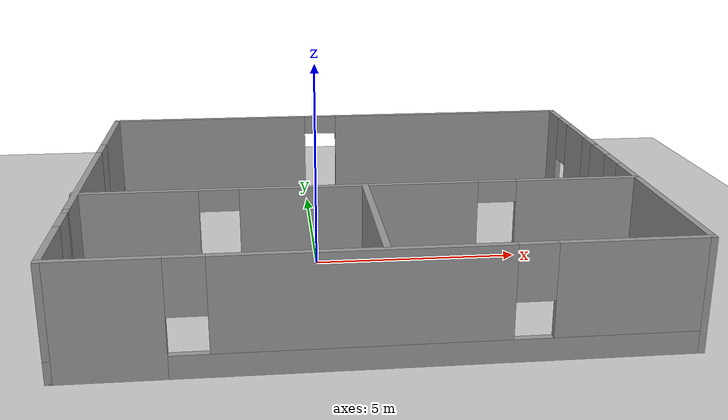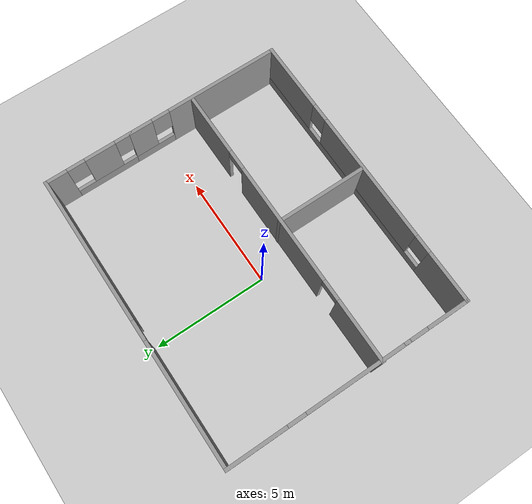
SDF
<sdf version="1.7">
 <world name="default">
  <light name="sun" type="directional">
   <pose>0 0 10 0 -0 0</pose>
   <diffuse>0.8 0.8 0.8 1</diffuse>
   <specular>0.2 0.2 0.2 1</specular>
   <attenuation>
    <range>1000</range>
    <constant>0.9</constant>
    <linear>0.01</linear>
    <quadratic>0.001</quadratic>
   </attenuation>
   <direction>-0.5 0.1 -0.9</direction>
   <spot><inner_angle>0</inner_angle><outer_angle>0</outer_angle><falloff>0</falloff></spot>
  </light>
  <model name="ground_plane">
   <static>1</static>
   <link name="link">
    <collision name="collision">
     <geometry><plane><normal>0 0 1</normal><size>100 100</size></plane></geometry>
     <surface><friction><ode><mu>100</mu><mu2>50</mu2></ode></friction></surface>
    </collision>
    <visual name="visual">
     <cast_shadows>0</cast_shadows>
     <geometry><plane><normal>0 0 1</normal><size>100 100</size></plane></geometry>
     <material>
      <script><uri>file://media/materials/scripts/gazebo.material</uri><name>Gazebo/Grey</name></script>
     </material>
    </visual>
   </link>
  </model>
  <gravity>0 0 -9.8</gravity>
  <magnetic_field>6e-06 2.3e-05 -4.2e-05</magnetic_field>
  <atmosphere type="adiabatic"/>
  <physics type="ode">
   <max_step_size>0.001</max_step_size>
   <real_time_factor>1</real_time_factor>
   <real_time_update_rate>1000</real_time_update_rate>
  </physics>
  <scene><ambient>0.4 0.4 0.4 1</ambient><background>0.7 0.7 0.7 1</background><shadows>1</shadows></scene>
  <audio><device>default</device></audio>
  <spherical_coordinates>
   <surface_model>EARTH_WGS84</surface_model>
   <latitude_deg>0</latitude_deg>
   <longitude_deg>0</longitude_deg>
   <elevation>0</elevation>
   <heading_deg>0</heading_deg>
  </spherical_coordinates>
  <model name="building">
   <pose>0.98547 -0.144116 0 0 -0 0</pose>
   <link name="Wall_19">
    <pose>-6.40505 1.425 0 0 -0 1.5708</pose>
    <visual name="Wall_19_Visual_0">
     <pose>-1.7335 0 1.25 0 -0 0</pose>
     <geometry><box><size>4.53301 0.15 2.5</size></box></geometry>
     <material>
      <script><uri>file://media/materials/scripts/gazebo.material</uri><name>Gazebo/Grey</name></script>
      <ambient>1 1 1 1</ambient>
     </material>
     <meta><layer>0</layer></meta>
    </visual>
    <collision name="Wall_19_Collision_0">
     <geometry><box><size>4.53301 0.15 2.5</size></box></geometry>
     <pose>-1.7335 0 1.25 0 -0 0</pose>
    </collision>
    <visual name="Wall_19_Visual_1">
     <pose>2.2665 0 0.25 0 -0 0</pose>
     <geometry><box><size>3.46699 0.15 0.5</size></box></geometry>
     <material>
      <script><uri>file://media/materials/scripts/gazebo.material</uri><name>Gazebo/Grey</name></script>
      <ambient>1 1 1 1</ambient>
     </material>
     <meta><layer>0</layer></meta>
    </visual>
    <collision name="Wall_19_Collision_1">
     <geometry><box><size>3.46699 0.15 0.5</size></box></geometry>
     <pose>2.2665 0 0.25 0 -0 0</pose>
    </collision>
    <visual name="Wall_19_Visual_2">
     <pose>2.6665 0 1.5 0 -0 0</pose>
     <geometry><box><size>2.66699 0.15 2</size></box></geometry>
     <material>
      <script><uri>file://media/materials/scripts/gazebo.material</uri><name>Gazebo/Grey</name></script>
      <ambient>1 1 1 1</ambient>
     </material>
     <meta><layer>0</layer></meta>
    </visual>
    <collision name="Wall_19_Collision_2">
     <geometry><box><size>2.66699 0.15 2</size></box></geometry>
     <pose>2.6665 0 1.5 0 -0 0</pose>
    </collision>
    <visual name="Wall_19_Visual_3">
     <pose>0.933011 0 1.9 0 -0 0</pose>
     <geometry><box><size>0.8 0.15 1.2</size></box></geometry>
     <material>
      <script><uri>file://media/materials/scripts/gazebo.material</uri><name>Gazebo/Grey</name></script>
      <ambient>1 1 1 1</ambient>
     </material>
     <meta><layer>0</layer></meta>
    </visual>
    <collision name="Wall_19_Collision_3">
     <geometry><box><size>0.8 0.15 1.2</size></box></geometry>
     <pose>0.933011 0 1.9 0 -0 0</pose>
    </collision>
   </link>
   <link name="Wall_21">
    <pose>-6.40505 -3.925 0 0 -0 -1.5708</pose>
    <visual name="Wall_21_Visual_0">
     <pose>-1.36275 0 1.25 0 -0 0</pose>
     <geometry><box><size>0.274493 0.15 2.5</size></box></geometry>
     <material>
      <script><uri>file://media/materials/scripts/gazebo.material</uri><name>Gazebo/Grey</name></script>
      <ambient>1 1 1 1</ambient>
     </material>
     <meta><layer>0</layer></meta>
    </visual>
    <collision name="Wall_21_Collision_0">
     <geometry><box><size>0.274493 0.15 2.5</size></box></geometry>
     <pose>-1.36275 0 1.25 0 -0 0</pose>
    </collision>
    <visual name="Wall_21_Visual_1">
     <pose>0.137246 0 0.25 0 -0 0</pose>
     <geometry><box><size>2.72551 0.15 0.5</size></box></geometry>
     <material>
      <script><uri>file://media/materials/scripts/gazebo.material</uri><name>Gazebo/Grey</name></script>
      <ambient>1 1 1 1</ambient>
     </material>
     <meta><layer>0</layer></meta>
    </visual>
    <collision name="Wall_21_Collision_1">
     <geometry><box><size>2.72551 0.15 0.5</size></box></geometry>
     <pose>0.137246 0 0.25 0 -0 0</pose>
    </collision>
    <visual name="Wall_21_Visual_2">
     <pose>0.537246 0 1.5 0 -0 0</pose>
     <geometry><box><size>1.92551 0.15 2</size></box></geometry>
     <material>
      <script><uri>file://media/materials/scripts/gazebo.material</uri><name>Gazebo/Grey</name></script>
      <ambient>1 1 1 1</ambient>
     </material>
     <meta><layer>0</layer></meta>
    </visual>
    <collision name="Wall_21_Collision_2">
     <geometry><box><size>1.92551 0.15 2</size></box></geometry>
     <pose>0.537246 0 1.5 0 -0 0</pose>
    </collision>
    <visual name="Wall_21_Visual_3">
     <pose>-0.825507 0 1.9 0 -0 0</pose>
     <geometry><box><size>0.8 0.15 1.2</size></box></geometry>
     <material>
      <script><uri>file://media/materials/scripts/gazebo.material</uri><name>Gazebo/Grey</name></script>
      <ambient>1 1 1 1</ambient>
     </material>
     <meta><layer>0</layer></meta>
    </visual>
    <collision name="Wall_21_Collision_3">
     <geometry><box><size>0.8 0.15 1.2</size></box></geometry>
     <pose>-0.825507 0 1.9 0 -0 0</pose>
    </collision>
   </link>
   <link name="Wall_22">
    <pose>0.019949 -5.35 0 0 -0 0</pose>
    <visual name="Wall_22_Visual_0">
     <pose>-5.3371 0 1.25 0 -0 0</pose>
     <geometry><box><size>2.32579 0.15 2.5</size></box></geometry>
     <material>
      <script><uri>file://media/materials/scripts/gazebo.material</uri><name>Gazebo/Grey</name></script>
      <ambient>1 1 1 1</ambient>
     </material>
     <meta><layer>0</layer></meta>
    </visual>
    <collision name="Wall_22_Collision_0">
     <geometry><box><size>2.32579 0.15 2.5</size></box></geometry>
     <pose>-5.3371 0 1.25 0 -0 0</pose>
    </collision>
    <visual name="Wall_22_Visual_1">
     <pose>1.1629 0 0.25 0 -0 0</pose>
     <geometry><box><size>10.6742 0.15 0.5</size></box></geometry>
     <material>
      <script><uri>file://media/materials/scripts/gazebo.material</uri><name>Gazebo/Grey</name></script>
      <ambient>1 1 1 1</ambient>
     </material>
     <meta><layer>0</layer></meta>
    </visual>
    <collision name="Wall_22_Collision_1">
     <geometry><box><size>10.6742 0.15 0.5</size></box></geometry>
     <pose>1.1629 0 0.25 0 -0 0</pose>
    </collision>
    <visual name="Wall_22_Visual_2">
     <pose>-0.414863 0 1.5 0 -0 0</pose>
     <geometry><box><size>5.91869 0.15 2</size></box></geometry>
     <material>
      <script><uri>file://media/materials/scripts/gazebo.material</uri><name>Gazebo/Grey</name></script>
      <ambient>1 1 1 1</ambient>
     </material>
     <meta><layer>0</layer></meta>
    </visual>
    <collision name="Wall_22_Collision_2">
     <geometry><box><size>5.91869 0.15 2</size></box></geometry>
     <pose>-0.414863 0 1.5 0 -0 0</pose>
    </collision>
    <visual name="Wall_22_Visual_3">
     <pose>4.92224 0 1.5 0 -0 0</pose>
     <geometry><box><size>3.15552 0.15 2</size></box></geometry>
     <material>
      <script><uri>file://media/materials/scripts/gazebo.material</uri><name>Gazebo/Grey</name></script>
      <ambient>1 1 1 1</ambient>
     </material>
     <meta><layer>0</layer></meta>
    </visual>
    <collision name="Wall_22_Collision_3">
     <geometry><box><size>3.15552 0.15 2</size></box></geometry>
     <pose>4.92224 0 1.5 0 -0 0</pose>
    </collision>
    <visual name="Wall_22_Visual_4">
     <pose>-3.77421 0 1.9 0 -0 0</pose>
     <geometry><box><size>0.8 0.15 1.2</size></box></geometry>
     <material>
      <script><uri>file://media/materials/scripts/gazebo.material</uri><name>Gazebo/Grey</name></script>
      <ambient>1 1 1 1</ambient>
     </material>
     <meta><layer>0</layer></meta>
    </visual>
    <collision name="Wall_22_Collision_4">
     <geometry><box><size>0.8 0.15 1.2</size></box></geometry>
     <pose>-3.77421 0 1.9 0 -0 0</pose>
    </collision>
    <visual name="Wall_22_Visual_5">
     <pose>2.94448 0 1.9 0 -0 0</pose>
     <geometry><box><size>0.8 0.15 1.2</size></box></geometry>
     <material>
      <script><uri>file://media/materials/scripts/gazebo.material</uri><name>Gazebo/Grey</name></script>
      <ambient>1 1 1 1</ambient>
     </material>
     <meta><layer>0</layer></meta>
    </visual>
    <collision name="Wall_22_Collision_5">
     <geometry><box><size>0.8 0.15 1.2</size></box></geometry>
     <pose>2.94448 0 1.9 0 -0 0</pose>
    </collision>
   </link>
   <link name="Wall_23">
    <pose>6.44495 -1.925 0 0 -0 1.5708</pose>
    <visual name="Wall_23_Visual_0">
     <pose>-0.937437 0 1.25 0 -0 0</pose>
     <geometry><box><size>5.12513 0.15 2.5</size></box></geometry>
     <material>
      <script><uri>file://media/materials/scripts/gazebo.material</uri><name>Gazebo/Grey</name></script>
      <ambient>1 1 1 1</ambient>
     </material>
     <meta><layer>0</layer></meta>
    </visual>
    <collision name="Wall_23_Collision_0">
     <geometry><box><size>5.12513 0.15 2.5</size></box></geometry>
     <pose>-0.937437 0 1.25 0 -0 0</pose>
    </collision>
    <visual name="Wall_23_Visual_1">
     <pose>2.56256 0 0.25 0 -0 0</pose>
     <geometry><box><size>1.87487 0.15 0.5</size></box></geometry>
     <material>
      <script><uri>file://media/materials/scripts/gazebo.material</uri><name>Gazebo/Grey</name></script>
      <ambient>1 1 1 1</ambient>
     </material>
     <meta><layer>0</layer></meta>
    </visual>
    <collision name="Wall_23_Collision_1">
     <geometry><box><size>1.87487 0.15 0.5</size></box></geometry>
     <pose>2.56256 0 0.25 0 -0 0</pose>
    </collision>
    <visual name="Wall_23_Visual_2">
     <pose>2.96256 0 1.5 0 -0 0</pose>
     <geometry><box><size>1.07487 0.15 2</size></box></geometry>
     <material>
      <script><uri>file://media/materials/scripts/gazebo.material</uri><name>Gazebo/Grey</name></script>
      <ambient>1 1 1 1</ambient>
     </material>
     <meta><layer>0</layer></meta>
    </visual>
    <collision name="Wall_23_Collision_2">
     <geometry><box><size>1.07487 0.15 2</size></box></geometry>
     <pose>2.96256 0 1.5 0 -0 0</pose>
    </collision>
    <visual name="Wall_23_Visual_3">
     <pose>2.02513 0 1.9 0 -0 0</pose>
     <geometry><box><size>0.8 0.15 1.2</size></box></geometry>
     <material>
      <script><uri>file://media/materials/scripts/gazebo.material</uri><name>Gazebo/Grey</name></script>
      <ambient>1 1 1 1</ambient>
     </material>
     <meta><layer>0</layer></meta>
    </visual>
    <collision name="Wall_23_Collision_3">
     <geometry><box><size>0.8 0.15 1.2</size></box></geometry>
     <pose>2.02513 0 1.9 0 -0 0</pose>
    </collision>
   </link>
   <link name="Wall_25">
    <pose>0.019949 5.35 0 0 -0 0</pose>
    <visual name="Wall_25_Visual_0">
     <pose>-3.76316 0 1.25 0 -0 0</pose>
     <geometry><box><size>5.47368 0.15 2.5</size></box></geometry>
     <material>
      <script><uri>file://media/materials/scripts/gazebo.material</uri><name>Gazebo/Grey</name></script>
      <ambient>1 1 1 1</ambient>
     </material>
     <meta><layer>0</layer></meta>
    </visual>
    <collision name="Wall_25_Collision_0">
     <geometry><box><size>5.47368 0.15 2.5</size></box></geometry>
     <pose>-3.76316 0 1.25 0 -0 0</pose>
    </collision>
    <visual name="Wall_25_Visual_1">
     <pose>3.18684 0 1.25 0 -0 0</pose>
     <geometry><box><size>6.62632 0.15 2.5</size></box></geometry>
     <material>
      <script><uri>file://media/materials/scripts/gazebo.material</uri><name>Gazebo/Grey</name></script>
      <ambient>1 1 1 1</ambient>
     </material>
     <meta><layer>0</layer></meta>
    </visual>
    <collision name="Wall_25_Collision_1">
     <geometry><box><size>6.62632 0.15 2.5</size></box></geometry>
     <pose>3.18684 0 1.25 0 -0 0</pose>
    </collision>
    <visual name="Wall_25_Visual_2">
     <pose>-0.576317 0 2.25 0 -0 0</pose>
     <geometry><box><size>0.9 0.15 0.5</size></box></geometry>
     <material>
      <script><uri>file://media/materials/scripts/gazebo.material</uri><name>Gazebo/Grey</name></script>
      <ambient>1 1 1 1</ambient>
     </material>
     <meta><layer>0</layer></meta>
    </visual>
    <collision name="Wall_25_Collision_2">
     <geometry><box><size>0.9 0.15 0.5</size></box></geometry>
     <pose>-0.576317 0 2.25 0 -0 0</pose>
    </collision>
   </link>
   <link name="Wall_26">
    <pose>6.44495 3.425 0 0 -0 -1.5708</pose>
    <visual name="Wall_26_Visual_0">
     <pose>-1.49329 0 1.25 0 -0 0</pose>
     <geometry><box><size>1.01342 0.15 2.5</size></box></geometry>
     <material>
      <script><uri>file://media/materials/scripts/gazebo.material</uri><name>Gazebo/Grey</name></script>
      <ambient>1 1 1 1</ambient>
     </material>
     <meta><layer>0</layer></meta>
    </visual>
    <collision name="Wall_26_Collision_0">
     <geometry><box><size>1.01342 0.15 2.5</size></box></geometry>
     <pose>-1.49329 0 1.25 0 -0 0</pose>
    </collision>
    <visual name="Wall_26_Visual_1">
     <pose>0.506712 0 0.25 0 -0 0</pose>
     <geometry><box><size>2.98658 0.15 0.5</size></box></geometry>
     <material>
      <script><uri>file://media/materials/scripts/gazebo.material</uri><name>Gazebo/Grey</name></script>
      <ambient>1 1 1 1</ambient>
     </material>
     <meta><layer>0</layer></meta>
    </visual>
    <collision name="Wall_26_Collision_1">
     <geometry><box><size>2.98658 0.15 0.5</size></box></geometry>
     <pose>0.506712 0 0.25 0 -0 0</pose>
    </collision>
    <visual name="Wall_26_Visual_2">
     <pose>0.504991 0 1.5 0 -0 0</pose>
     <geometry><box><size>1.38314 0.15 2</size></box></geometry>
     <material>
      <script><uri>file://media/materials/scripts/gazebo.material</uri><name>Gazebo/Grey</name></script>
      <ambient>1 1 1 1</ambient>
     </material>
     <meta><layer>0</layer></meta>
    </visual>
    <collision name="Wall_26_Collision_2">
     <geometry><box><size>1.38314 0.15 2</size></box></geometry>
     <pose>0.504991 0 1.5 0 -0 0</pose>
    </collision>
    <visual name="Wall_26_Visual_3">
     <pose>1.99828 0 1.5 0 -0 0</pose>
     <geometry><box><size>0.003441 0.15 2</size></box></geometry>
     <material>
      <script><uri>file://media/materials/scripts/gazebo.material</uri><name>Gazebo/Grey</name></script>
      <ambient>1 1 1 1</ambient>
     </material>
     <meta><layer>0</layer></meta>
    </visual>
    <collision name="Wall_26_Collision_3">
     <geometry><box><size>0.003441 0.15 2</size></box></geometry>
     <pose>1.99828 0 1.5 0 -0 0</pose>
    </collision>
    <visual name="Wall_26_Visual_4">
     <pose>-0.586577 0 1.9 0 -0 0</pose>
     <geometry><box><size>0.8 0.15 1.2</size></box></geometry>
     <material>
      <script><uri>file://media/materials/scripts/gazebo.material</uri><name>Gazebo/Grey</name></script>
      <ambient>1 1 1 1</ambient>
     </material>
     <meta><layer>0</layer></meta>
    </visual>
    <collision name="Wall_26_Collision_4">
     <geometry><box><size>0.8 0.15 1.2</size></box></geometry>
     <pose>-0.586577 0 1.9 0 -0 0</pose>
    </collision>
    <visual name="Wall_26_Visual_5">
     <pose>1.59656 0 1.9 0 -0 0</pose>
     <geometry><box><size>0.8 0.15 1.2</size></box></geometry>
     <material>
      <script><uri>file://media/materials/scripts/gazebo.material</uri><name>Gazebo/Grey</name></script>
      <ambient>1 1 1 1</ambient>
     </material>
     <meta><layer>0</layer></meta>
    </visual>
    <collision name="Wall_26_Collision_5">
     <geometry><box><size>0.8 0.15 1.2</size></box></geometry>
     <pose>1.59656 0 1.9 0 -0 0</pose>
    </collision>
   </link>
   <link name="Wall_30">
    <pose>-0.019949 -1.39582 0 0 -0 0</pose>
    <visual name="Wall_30_Visual_0">
     <pose>-5.09295 0 1.25 0 -0 0</pose>
     <geometry><box><size>2.81411 0.15 2.5</size></box></geometry>
     <material>
      <script><uri>file://media/materials/scripts/gazebo.material</uri><name>Gazebo/Grey</name></script>
      <ambient>1 1 1 1</ambient>
     </material>
     <meta><layer>0</layer></meta>
    </visual>
    <collision name="Wall_30_Collision_0">
     <geometry><box><size>2.81411 0.15 2.5</size></box></geometry>
     <pose>-5.09295 0 1.25 0 -0 0</pose>
    </collision>
    <visual name="Wall_30_Visual_1">
     <pose>-0.050993 0 1.25 0 -0 0</pose>
     <geometry><box><size>5.4698 0.15 2.5</size></box></geometry>
     <material>
      <script><uri>file://media/materials/scripts/gazebo.material</uri><name>Gazebo/Grey</name></script>
      <ambient>1 1 1 1</ambient>
     </material>
     <meta><layer>0</layer></meta>
    </visual>
    <collision name="Wall_30_Collision_1">
     <geometry><box><size>5.4698 0.15 2.5</size></box></geometry>
     <pose>-0.050993 0 1.25 0 -0 0</pose>
    </collision>
    <visual name="Wall_30_Visual_2">
     <pose>5.04195 0 1.25 0 -0 0</pose>
     <geometry><box><size>2.91609 0.15 2.5</size></box></geometry>
     <material>
      <script><uri>file://media/materials/scripts/gazebo.material</uri><name>Gazebo/Grey</name></script>
      <ambient>1 1 1 1</ambient>
     </material>
     <meta><layer>0</layer></meta>
    </visual>
    <collision name="Wall_30_Collision_2">
     <geometry><box><size>2.91609 0.15 2.5</size></box></geometry>
     <pose>5.04195 0 1.25 0 -0 0</pose>
    </collision>
    <visual name="Wall_30_Visual_3">
     <pose>-3.23589 0 2.25 0 -0 0</pose>
     <geometry><box><size>0.9 0.15 0.5</size></box></geometry>
     <material>
      <script><uri>file://media/materials/scripts/gazebo.material</uri><name>Gazebo/Grey</name></script>
      <ambient>1 1 1 1</ambient>
     </material>
     <meta><layer>0</layer></meta>
    </visual>
    <collision name="Wall_30_Collision_3">
     <geometry><box><size>0.9 0.15 0.5</size></box></geometry>
     <pose>-3.23589 0 2.25 0 -0 0</pose>
    </collision>
    <visual name="Wall_30_Visual_4">
     <pose>3.1339 0 2.25 0 -0 0</pose>
     <geometry><box><size>0.9 0.15 0.5</size></box></geometry>
     <material>
      <script><uri>file://media/materials/scripts/gazebo.material</uri><name>Gazebo/Grey</name></script>
      <ambient>1 1 1 1</ambient>
     </material>
     <meta><layer>0</layer></meta>
    </visual>
    <collision name="Wall_30_Collision_4">
     <geometry><box><size>0.9 0.15 0.5</size></box></geometry>
     <pose>3.1339 0 2.25 0 -0 0</pose>
    </collision>
   </link>
   <link name="Wall_32">
    <collision name="Wall_32_Collision">
     <geometry><box><size>4 0.15 2.5</size></box></geometry>
     <pose>0 0 1.25 0 -0 0</pose>
    </collision>
    <visual name="Wall_32_Visual">
     <pose>0 0 1.25 0 -0 0</pose>
     <geometry><box><size>4 0.15 2.5</size></box></geometry>
     <material>
      <script><uri>file://media/materials/scripts/gazebo.material</uri><name>Gazebo/Grey</name></script>
      <ambient>1 1 1 1</ambient>
     </material>
     <meta><layer>0</layer></meta>
    </visual>
    <pose>0.050725 -3.3043 0 0 -0 -1.5708</pose>
   </link>
   <static>1</static>
  </model>
 </world>
</sdf>
